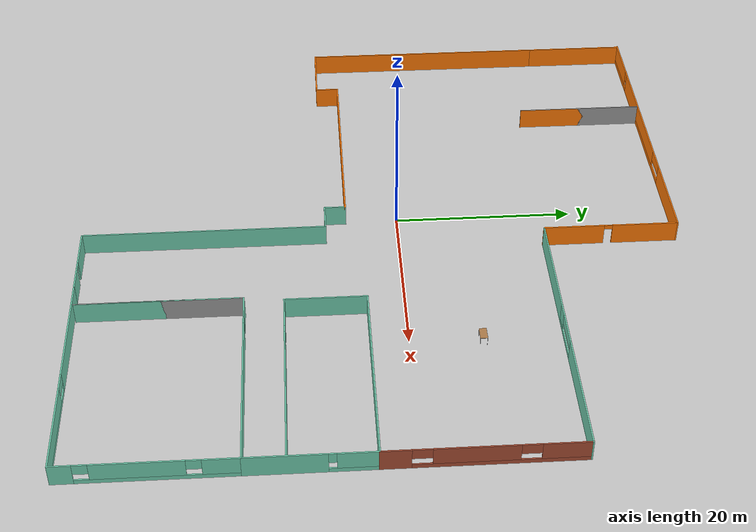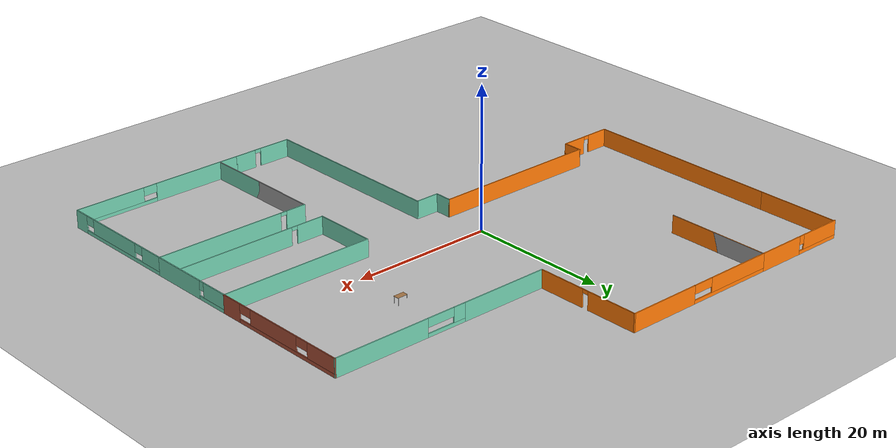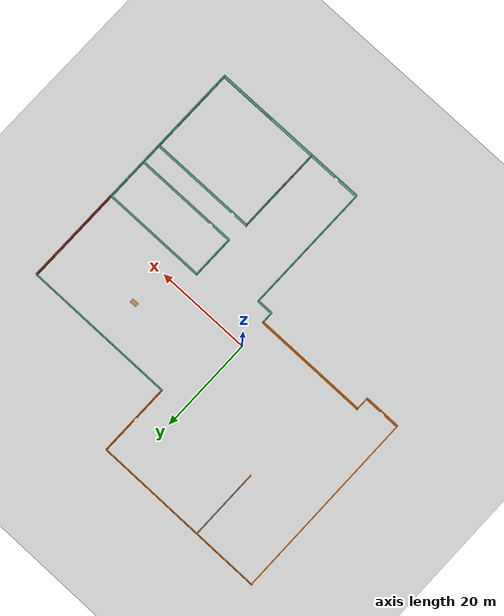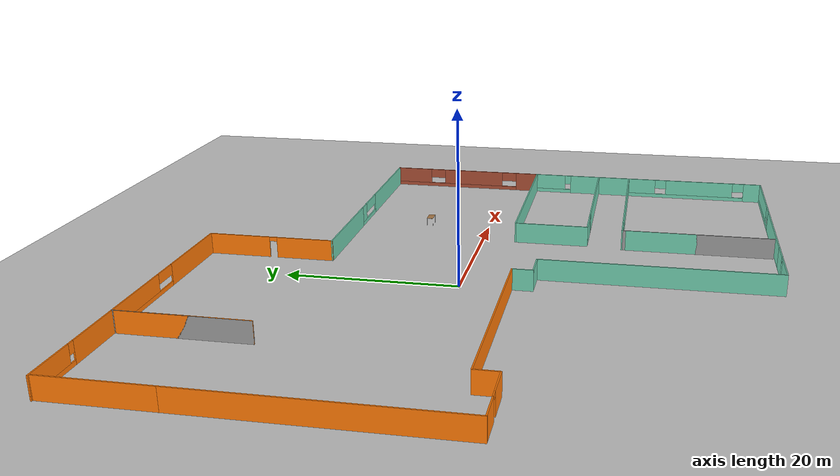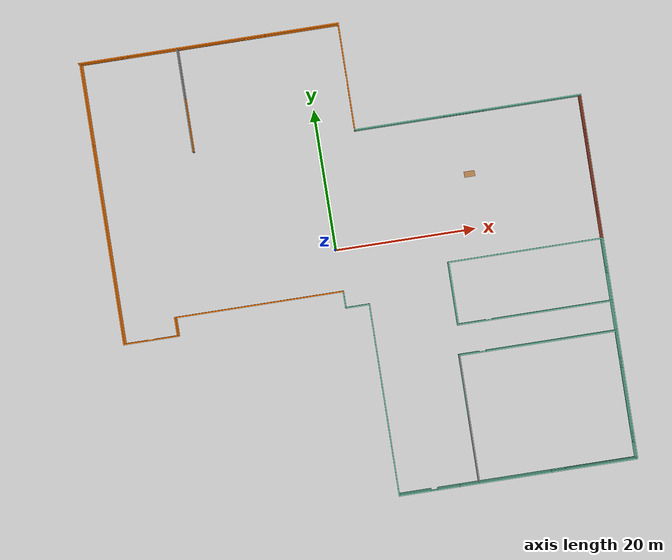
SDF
<sdf version="1.6">
 <world name="default">
  <model name="ground_plane">
   <static>1</static>
   <link name="link">
    <collision name="collision">
     <geometry><plane><normal>0 0 1</normal><size>100 100</size></plane></geometry>
     <surface>
      <contact><collide_bitmask>65535</collide_bitmask></contact>
      <friction><ode><mu>100</mu><mu2>50</mu2></ode></friction>
     </surface>
    </collision>
    <visual name="visual">
     <cast_shadows>0</cast_shadows>
     <geometry><plane><normal>0 0 1</normal><size>100 100</size></plane></geometry>
     <material>
      <script><uri>file://media/materials/scripts/gazebo.material</uri><name>Gazebo/Grey</name></script>
     </material>
    </visual>
   </link>
  </model>
  <model name="building1">
   <pose>2.8843 -1.97126 0 0 -0 0</pose>
   <link name="Wall_0">
    <collision name="Wall_0_Collision">
     <geometry><box><size>28.25 0.15 2.5</size></box></geometry>
     <pose>0 0 1.25 0 -0 0</pose>
    </collision>
    <visual name="Wall_0_Visual">
     <pose>0 0 1.25 0 -0 0</pose>
     <geometry><box><size>28.25 0.15 2.5</size></box></geometry>
     <material>
      <script><uri>file://media/materials/scripts/gazebo.material</uri><name>Gazebo/Grey</name></script>
      <ambient>0.996078 0.47451 0.0196078 1</ambient>
     </material>
     <meta><layer>0</layer></meta>
    </visual>
    <pose>-34.175 7.575 0 0 0 -1.5708</pose>
   </link>
   <link name="Wall_1">
    <pose>-30.375 -6.475 0 0 -0 0</pose>
    <visual name="Wall_1_Visual_0">
     <pose>-2.22971 0 1.25 0 -0 0</pose>
     <geometry><box><size>3.29058 0.15 2.5</size></box></geometry>
     <material>
      <script><uri>file://media/materials/scripts/gazebo.material</uri><name>Gazebo/Grey</name></script>
      <ambient>0.996078 0.47451 0.0196078 1</ambient>
     </material>
     <meta><layer>0</layer></meta>
    </visual>
    <collision name="Wall_1_Collision_0">
     <geometry><box><size>3.29058 0.15 2.5</size></box></geometry>
     <pose>-2.22971 0 1.25 0 -0 0</pose>
    </collision>
    <visual name="Wall_1_Visual_1">
     <pose>2.09529 0 1.25 0 -0 0</pose>
     <geometry><box><size>3.55942 0.15 2.5</size></box></geometry>
     <material>
      <script><uri>file://media/materials/scripts/gazebo.material</uri><name>Gazebo/Grey</name></script>
      <ambient>0.996078 0.47451 0.0196078 1</ambient>
     </material>
     <meta><layer>0</layer></meta>
    </visual>
    <collision name="Wall_1_Collision_1">
     <geometry><box><size>3.55942 0.15 2.5</size></box></geometry>
     <pose>2.09529 0 1.25 0 -0 0</pose>
    </collision>
    <visual name="Wall_1_Visual_2">
     <pose>-0.134418 0 2.25 0 -0 0</pose>
     <geometry><box><size>0.9 0.15 0.5</size></box></geometry>
     <material>
      <script><uri>file://media/materials/scripts/gazebo.material</uri><name>Gazebo/Grey</name></script>
      <ambient>0.996078 0.47451 0.0196078 1</ambient>
     </material>
     <meta><layer>0</layer></meta>
    </visual>
    <collision name="Wall_1_Collision_2">
     <geometry><box><size>0.9 0.15 0.5</size></box></geometry>
     <pose>-0.134418 0 2.25 0 -0 0</pose>
    </collision>
   </link>
   <link name="Wall_10">
    <pose>23.15 -15.225 0 0 -0 3.14159</pose>
    <visual name="Wall_10_Visual_0">
     <pose>-1.95259 0 1.25 0 -0 0</pose>
     <geometry><box><size>18.5948 0.15 2.5</size></box></geometry>
     <material>
      <script><uri>file://media/materials/scripts/gazebo.material</uri><name>Gazebo/Grey</name></script>
      <ambient>0.435294 0.796078 0.67451 1</ambient>
     </material>
     <meta><layer>0</layer></meta>
    </visual>
    <collision name="Wall_10_Collision_0">
     <geometry><box><size>18.5948 0.15 2.5</size></box></geometry>
     <pose>-1.95259 0 1.25 0 -0 0</pose>
    </collision>
    <visual name="Wall_10_Visual_1">
     <pose>9.74741 0 1.25 0 -0 0</pose>
     <geometry><box><size>3.00517 0.15 2.5</size></box></geometry>
     <material>
      <script><uri>file://media/materials/scripts/gazebo.material</uri><name>Gazebo/Grey</name></script>
      <ambient>0.435294 0.796078 0.67451 1</ambient>
     </material>
     <meta><layer>0</layer></meta>
    </visual>
    <collision name="Wall_10_Collision_1">
     <geometry><box><size>3.00517 0.15 2.5</size></box></geometry>
     <pose>9.74741 0 1.25 0 -0 0</pose>
    </collision>
    <visual name="Wall_10_Visual_2">
     <pose>7.79483 0 2.25 0 -0 0</pose>
     <geometry><box><size>0.9 0.15 0.5</size></box></geometry>
     <material>
      <script><uri>file://media/materials/scripts/gazebo.material</uri><name>Gazebo/Grey</name></script>
      <ambient>0.435294 0.796078 0.67451 1</ambient>
     </material>
     <meta><layer>0</layer></meta>
    </visual>
    <collision name="Wall_10_Collision_2">
     <geometry><box><size>0.9 0.15 0.5</size></box></geometry>
     <pose>7.79483 0 2.25 0 -0 0</pose>
    </collision>
   </link>
   <link name="Wall_11">
    <collision name="Wall_11_Collision">
     <geometry><box><size>18 0.15 2.5</size></box></geometry>
     <pose>0 0 1.25 0 -0 0</pose>
    </collision>
    <visual name="Wall_11_Visual">
     <pose>0 0 1.25 0 -0 0</pose>
     <geometry><box><size>18 0.15 2.5</size></box></geometry>
     <material>
      <script><uri>file://media/materials/scripts/gazebo.material</uri><name>Gazebo/Grey</name></script>
      <ambient>1 1 1 1</ambient>
     </material>
     <meta><layer>0</layer></meta>
    </visual>
    <pose>11.975 -24.15 0 0 0 -1.5708</pose>
   </link>
   <link name="Wall_12">
    <collision name="Wall_12_Collision">
     <geometry><box><size>17.5 0.15 2.5</size></box></geometry>
     <pose>0 0 1.25 0 -0 0</pose>
    </collision>
    <visual name="Wall_12_Visual">
     <pose>0 0 1.25 0 -0 0</pose>
     <geometry><box><size>17.5 0.15 2.5</size></box></geometry>
     <material>
      <script><uri>file://media/materials/scripts/gazebo.material</uri><name>Gazebo/Grey</name></script>
      <ambient>0.435294 0.796078 0.67451 1</ambient>
     </material>
     <meta><layer>0</layer></meta>
    </visual>
    <pose>11.975 -24.4 0 0 -0 1.5708</pose>
   </link>
   <link name="Wall_14">
    <pose>34.325 -8.675 0 0 -0 1.5708</pose>
    <visual name="Wall_14_Visual_0">
     <pose>-2.47216 0 1.25 0 -0 0</pose>
     <geometry><box><size>8.30568 0.15 2.5</size></box></geometry>
     <material>
      <script><uri>file://media/materials/scripts/gazebo.material</uri><name>Gazebo/Grey</name></script>
      <ambient>0.435294 0.796078 0.67451 1</ambient>
     </material>
     <meta><layer>0</layer></meta>
    </visual>
    <collision name="Wall_14_Collision_0">
     <geometry><box><size>8.30568 0.15 2.5</size></box></geometry>
     <pose>-2.47216 0 1.25 0 -0 0</pose>
    </collision>
    <visual name="Wall_14_Visual_1">
     <pose>4.15284 0 0.25 0 -0 0</pose>
     <geometry><box><size>4.94432 0.15 0.5</size></box></geometry>
     <material>
      <script><uri>file://media/materials/scripts/gazebo.material</uri><name>Gazebo/Grey</name></script>
      <ambient>0.435294 0.796078 0.67451 1</ambient>
     </material>
     <meta><layer>0</layer></meta>
    </visual>
    <collision name="Wall_14_Collision_1">
     <geometry><box><size>4.94432 0.15 0.5</size></box></geometry>
     <pose>4.15284 0 0.25 0 -0 0</pose>
    </collision>
    <visual name="Wall_14_Visual_2">
     <pose>4.55284 0 1.5 0 -0 0</pose>
     <geometry><box><size>4.14432 0.15 2</size></box></geometry>
     <material>
      <script><uri>file://media/materials/scripts/gazebo.material</uri><name>Gazebo/Grey</name></script>
      <ambient>0.435294 0.796078 0.67451 1</ambient>
     </material>
     <meta><layer>0</layer></meta>
    </visual>
    <collision name="Wall_14_Collision_2">
     <geometry><box><size>4.14432 0.15 2</size></box></geometry>
     <pose>4.55284 0 1.5 0 -0 0</pose>
    </collision>
    <visual name="Wall_14_Visual_3">
     <pose>2.08068 0 1.9 0 -0 0</pose>
     <geometry><box><size>0.8 0.15 1.2</size></box></geometry>
     <material>
      <script><uri>file://media/materials/scripts/gazebo.material</uri><name>Gazebo/Grey</name></script>
      <ambient>0.435294 0.796078 0.67451 1</ambient>
     </material>
     <meta><layer>0</layer></meta>
    </visual>
    <collision name="Wall_14_Collision_3">
     <geometry><box><size>0.8 0.15 1.2</size></box></geometry>
     <pose>2.08068 0 1.9 0 -0 0</pose>
    </collision>
   </link>
   <link name="Wall_15">
    <collision name="Wall_15_Collision">
     <geometry><box><size>22 0.15 2.5</size></box></geometry>
     <pose>0 0 1.25 0 -0 0</pose>
    </collision>
    <visual name="Wall_15_Visual">
     <pose>0 0 1.25 0 -0 0</pose>
     <geometry><box><size>22 0.15 2.5</size></box></geometry>
     <material>
      <script><uri>file://media/materials/scripts/gazebo.material</uri><name>Gazebo/Grey</name></script>
      <ambient>0.435294 0.796078 0.67451 1</ambient>
     </material>
     <meta><layer>0</layer></meta>
    </visual>
    <pose>23.4 -2.125 0 0 -0 3.14159</pose>
   </link>
   <link name="Wall_16">
    <collision name="Wall_16_Collision">
     <geometry><box><size>9 0.15 2.5</size></box></geometry>
     <pose>0 0 1.25 0 -0 0</pose>
    </collision>
    <visual name="Wall_16_Visual">
     <pose>0 0 1.25 0 -0 0</pose>
     <geometry><box><size>9 0.15 2.5</size></box></geometry>
     <material>
      <script><uri>file://media/materials/scripts/gazebo.material</uri><name>Gazebo/Grey</name></script>
      <ambient>0.435294 0.796078 0.67451 1</ambient>
     </material>
     <meta><layer>0</layer></meta>
    </visual>
    <pose>12.475 -6.55 0 0 0 -1.5708</pose>
   </link>
   <link name="Wall_17">
    <pose>23.4 -10.975 0 0 -0 0</pose>
    <visual name="Wall_17_Visual_0">
     <pose>-8.94755 0 1.25 0 -0 0</pose>
     <geometry><box><size>4.1049 0.15 2.5</size></box></geometry>
     <material>
      <script><uri>file://media/materials/scripts/gazebo.material</uri><name>Gazebo/Grey</name></script>
      <ambient>0.435294 0.796078 0.67451 1</ambient>
     </material>
     <meta><layer>0</layer></meta>
    </visual>
    <collision name="Wall_17_Collision_0">
     <geometry><box><size>4.1049 0.15 2.5</size></box></geometry>
     <pose>-8.94755 0 1.25 0 -0 0</pose>
    </collision>
    <visual name="Wall_17_Visual_1">
     <pose>2.50245 0 1.25 0 -0 0</pose>
     <geometry><box><size>16.9951 0.15 2.5</size></box></geometry>
     <material>
      <script><uri>file://media/materials/scripts/gazebo.material</uri><name>Gazebo/Grey</name></script>
      <ambient>0.435294 0.796078 0.67451 1</ambient>
     </material>
     <meta><layer>0</layer></meta>
    </visual>
    <collision name="Wall_17_Collision_1">
     <geometry><box><size>16.9951 0.15 2.5</size></box></geometry>
     <pose>2.50245 0 1.25 0 -0 0</pose>
    </collision>
    <visual name="Wall_17_Visual_2">
     <pose>-6.4451 0 2.25 0 -0 0</pose>
     <geometry><box><size>0.9 0.15 0.5</size></box></geometry>
     <material>
      <script><uri>file://media/materials/scripts/gazebo.material</uri><name>Gazebo/Grey</name></script>
      <ambient>0.435294 0.796078 0.67451 1</ambient>
     </material>
     <meta><layer>0</layer></meta>
    </visual>
    <collision name="Wall_17_Collision_2">
     <geometry><box><size>0.9 0.15 0.5</size></box></geometry>
     <pose>-6.4451 0 2.25 0 -0 0</pose>
    </collision>
   </link>
   <link name="Wall_19">
    <pose>34.325 8.05 0 0 -0 1.5708</pose>
    <visual name="Wall_19_Visual_0">
     <pose>-8.69186 0 1.25 0 -0 0</pose>
     <geometry><box><size>3.11628 0.15 2.5</size></box></geometry>
     <material>
      <script><uri>file://media/materials/scripts/gazebo.material</uri><name>Gazebo/Bricks</name></script>
      <ambient>0.435294 0.796078 0.67451 1</ambient>
     </material>
     <meta><layer>0</layer></meta>
    </visual>
    <collision name="Wall_19_Collision_0">
     <geometry><box><size>3.11628 0.15 2.5</size></box></geometry>
     <pose>-8.69186 0 1.25 0 -0 0</pose>
    </collision>
    <visual name="Wall_19_Visual_1">
     <pose>1.55814 0 0.25 0 -0 0</pose>
     <geometry><box><size>17.3837 0.15 0.5</size></box></geometry>
     <material>
      <script><uri>file://media/materials/scripts/gazebo.material</uri><name>Gazebo/Bricks</name></script>
      <ambient>0.435294 0.796078 0.67451 1</ambient>
     </material>
     <meta><layer>0</layer></meta>
    </visual>
    <collision name="Wall_19_Collision_1">
     <geometry><box><size>17.3837 0.15 0.5</size></box></geometry>
     <pose>1.55814 0 0.25 0 -0 0</pose>
    </collision>
    <visual name="Wall_19_Visual_2">
     <pose>-0.896427 0 1.5 0 -0 0</pose>
     <geometry><box><size>8.47458 0.15 2</size></box></geometry>
     <material>
      <script><uri>file://media/materials/scripts/gazebo.material</uri><name>Gazebo/Bricks</name></script>
      <ambient>0.435294 0.796078 0.67451 1</ambient>
     </material>
     <meta><layer>0</layer></meta>
    </visual>
    <collision name="Wall_19_Collision_2">
     <geometry><box><size>8.47458 0.15 2</size></box></geometry>
     <pose>-0.896427 0 1.5 0 -0 0</pose>
    </collision>
    <visual name="Wall_19_Visual_3">
     <pose>7.79543 0 1.5 0 -0 0</pose>
     <geometry><box><size>4.90914 0.15 2</size></box></geometry>
     <material>
      <script><uri>file://media/materials/scripts/gazebo.material</uri><name>Gazebo/Bricks</name></script>
      <ambient>0.435294 0.796078 0.67451 1</ambient>
     </material>
     <meta><layer>0</layer></meta>
    </visual>
    <collision name="Wall_19_Collision_3">
     <geometry><box><size>4.90914 0.15 2</size></box></geometry>
     <pose>7.79543 0 1.5 0 -0 0</pose>
    </collision>
    <visual name="Wall_19_Visual_4">
     <pose>-6.13372 0 1.9 0 -0 0</pose>
     <geometry><box><size>2 0.15 1.2</size></box></geometry>
     <material>
      <script><uri>file://media/materials/scripts/gazebo.material</uri><name>Gazebo/Bricks</name></script>
      <ambient>0.435294 0.796078 0.67451 1</ambient>
     </material>
     <meta><layer>0</layer></meta>
    </visual>
    <collision name="Wall_19_Collision_4">
     <geometry><box><size>2 0.15 1.2</size></box></geometry>
     <pose>-6.13372 0 1.9 0 -0 0</pose>
    </collision>
    <visual name="Wall_19_Visual_5">
     <pose>4.34086 0 1.9 0 -0 0</pose>
     <geometry><box><size>2 0.15 1.2</size></box></geometry>
     <material>
      <script><uri>file://media/materials/scripts/gazebo.material</uri><name>Gazebo/Bricks</name></script>
      <ambient>0.435294 0.796078 0.67451 1</ambient>
     </material>
     <meta><layer>0</layer></meta>
    </visual>
    <collision name="Wall_19_Collision_5">
     <geometry><box><size>2 0.15 1.2</size></box></geometry>
     <pose>4.34086 0 1.9 0 -0 0</pose>
    </collision>
   </link>
   <link name="Wall_2">
    <collision name="Wall_2_Collision">
     <geometry><box><size>2.75 0.15 2.5</size></box></geometry>
     <pose>0 0 1.25 0 -0 0</pose>
    </collision>
    <visual name="Wall_2_Visual">
     <pose>0 0 1.25 0 -0 0</pose>
     <geometry><box><size>2.75 0.15 2.5</size></box></geometry>
     <material>
      <script><uri>file://media/materials/scripts/gazebo.material</uri><name>Gazebo/Grey</name></script>
      <ambient>0.996078 0.47451 0.0196078 1</ambient>
     </material>
     <meta><layer>0</layer></meta>
    </visual>
    <pose>-26.575 -5.175 0 0 -0 1.5708</pose>
   </link>
   <link name="Wall_20">
    <pose>24.65 18.225 0 0 -0 3.14159</pose>
    <visual name="Wall_20_Visual_0">
     <pose>-2.88254 0 1.25 0 -0 0</pose>
     <geometry><box><size>13.7349 0.15 2.5</size></box></geometry>
     <material>
      <script><uri>file://media/materials/scripts/gazebo.material</uri><name>Gazebo/Grey</name></script>
      <ambient>0.435294 0.796078 0.67451 1</ambient>
     </material>
     <meta><layer>0</layer></meta>
    </visual>
    <collision name="Wall_20_Collision_0">
     <geometry><box><size>13.7349 0.15 2.5</size></box></geometry>
     <pose>-2.88254 0 1.25 0 -0 0</pose>
    </collision>
    <visual name="Wall_20_Visual_1">
     <pose>6.86746 0 0.25 0 -0 0</pose>
     <geometry><box><size>5.76509 0.15 0.5</size></box></geometry>
     <material>
      <script><uri>file://media/materials/scripts/gazebo.material</uri><name>Gazebo/Grey</name></script>
      <ambient>0.435294 0.796078 0.67451 1</ambient>
     </material>
     <meta><layer>0</layer></meta>
    </visual>
    <collision name="Wall_20_Collision_1">
     <geometry><box><size>5.76509 0.15 0.5</size></box></geometry>
     <pose>6.86746 0 0.25 0 -0 0</pose>
    </collision>
    <visual name="Wall_20_Visual_2">
     <pose>8.86746 0 1.5 0 -0 0</pose>
     <geometry><box><size>1.76509 0.15 2</size></box></geometry>
     <material>
      <script><uri>file://media/materials/scripts/gazebo.material</uri><name>Gazebo/Grey</name></script>
      <ambient>0.435294 0.796078 0.67451 1</ambient>
     </material>
     <meta><layer>0</layer></meta>
    </visual>
    <collision name="Wall_20_Collision_2">
     <geometry><box><size>1.76509 0.15 2</size></box></geometry>
     <pose>8.86746 0 1.5 0 -0 0</pose>
    </collision>
    <visual name="Wall_20_Visual_3">
     <pose>5.98491 0 1.9 0 -0 0</pose>
     <geometry><box><size>4 0.15 1.2</size></box></geometry>
     <material>
      <script><uri>file://media/materials/scripts/gazebo.material</uri><name>Gazebo/Grey</name></script>
      <ambient>0.435294 0.796078 0.67451 1</ambient>
     </material>
     <meta><layer>0</layer></meta>
    </visual>
    <collision name="Wall_20_Collision_3">
     <geometry><box><size>4 0.15 1.2</size></box></geometry>
     <pose>5.98491 0 1.9 0 -0 0</pose>
    </collision>
   </link>
   <link name="Wall_21">
    <collision name="Wall_21_Collision">
     <geometry><box><size>12.75 0.15 2.5</size></box></geometry>
     <pose>0 0 1.25 0 -0 0</pose>
    </collision>
    <visual name="Wall_21_Visual">
     <pose>0 0 1.25 0 -0 0</pose>
     <geometry><box><size>12.75 0.15 2.5</size></box></geometry>
     <material>
      <script><uri>file://media/materials/scripts/gazebo.material</uri><name>Gazebo/Grey</name></script>
      <ambient>0.435294 0.796078 0.67451 1</ambient>
     </material>
     <meta><layer>0</layer></meta>
    </visual>
    <pose>8.675 18.225 0 0 -0 3.14159</pose>
   </link>
   <link name="Wall_22">
    <pose>2.375 25.775 0 0 -0 1.5708</pose>
    <visual name="Wall_22_Visual_0">
     <pose>-4.18684 0 1.25 0 -0 0</pose>
     <geometry><box><size>6.87632 0.15 2.5</size></box></geometry>
     <material>
      <script><uri>file://media/materials/scripts/gazebo.material</uri><name>Gazebo/Grey</name></script>
      <ambient>0.996078 0.47451 0.0196078 1</ambient>
     </material>
     <meta><layer>0</layer></meta>
    </visual>
    <collision name="Wall_22_Collision_0">
     <geometry><box><size>6.87632 0.15 2.5</size></box></geometry>
     <pose>-4.18684 0 1.25 0 -0 0</pose>
    </collision>
    <visual name="Wall_22_Visual_1">
     <pose>3.88816 0 1.25 0 -0 0</pose>
     <geometry><box><size>7.47368 0.15 2.5</size></box></geometry>
     <material>
      <script><uri>file://media/materials/scripts/gazebo.material</uri><name>Gazebo/Grey</name></script>
      <ambient>0.996078 0.47451 0.0196078 1</ambient>
     </material>
     <meta><layer>0</layer></meta>
    </visual>
    <collision name="Wall_22_Collision_1">
     <geometry><box><size>7.47368 0.15 2.5</size></box></geometry>
     <pose>3.88816 0 1.25 0 -0 0</pose>
    </collision>
    <visual name="Wall_22_Visual_2">
     <pose>-0.298676 0 2.25 0 -0 0</pose>
     <geometry><box><size>0.9 0.15 0.5</size></box></geometry>
     <material>
      <script><uri>file://media/materials/scripts/gazebo.material</uri><name>Gazebo/Grey</name></script>
      <ambient>0.996078 0.47451 0.0196078 1</ambient>
     </material>
     <meta><layer>0</layer></meta>
    </visual>
    <collision name="Wall_22_Collision_2">
     <geometry><box><size>0.9 0.15 0.5</size></box></geometry>
     <pose>-0.298676 0 2.25 0 -0 0</pose>
    </collision>
   </link>
   <link name="Wall_23">
    <pose>-9.05 33.325 0 0 -0 3.14159</pose>
    <visual name="Wall_23_Visual_0">
     <pose>-6.28232 0 1.25 0 -0 0</pose>
     <geometry><box><size>10.4354 0.15 2.5</size></box></geometry>
     <material>
      <script><uri>file://media/materials/scripts/gazebo.material</uri><name>Gazebo/Grey</name></script>
      <ambient>0.996078 0.47451 0.0196078 1</ambient>
     </material>
     <meta><layer>0</layer></meta>
    </visual>
    <collision name="Wall_23_Collision_0">
     <geometry><box><size>10.4354 0.15 2.5</size></box></geometry>
     <pose>-6.28232 0 1.25 0 -0 0</pose>
    </collision>
    <visual name="Wall_23_Visual_1">
     <pose>5.21768 0 0.25 0 -0 0</pose>
     <geometry><box><size>12.5646 0.15 0.5</size></box></geometry>
     <material>
      <script><uri>file://media/materials/scripts/gazebo.material</uri><name>Gazebo/Grey</name></script>
      <ambient>0.996078 0.47451 0.0196078 1</ambient>
     </material>
     <meta><layer>0</layer></meta>
    </visual>
    <collision name="Wall_23_Collision_1">
     <geometry><box><size>12.5646 0.15 0.5</size></box></geometry>
     <pose>5.21768 0 0.25 0 -0 0</pose>
    </collision>
    <visual name="Wall_23_Visual_2">
     <pose>6.71768 0 1.5 0 -0 0</pose>
     <geometry><box><size>9.56464 0.15 2</size></box></geometry>
     <material>
      <script><uri>file://media/materials/scripts/gazebo.material</uri><name>Gazebo/Grey</name></script>
      <ambient>0.996078 0.47451 0.0196078 1</ambient>
     </material>
     <meta><layer>0</layer></meta>
    </visual>
    <collision name="Wall_23_Collision_2">
     <geometry><box><size>9.56464 0.15 2</size></box></geometry>
     <pose>6.71768 0 1.5 0 -0 0</pose>
    </collision>
    <visual name="Wall_23_Visual_3">
     <pose>0.435356 0 1.9 0 -0 0</pose>
     <geometry><box><size>3 0.15 1.2</size></box></geometry>
     <material>
      <script><uri>file://media/materials/scripts/gazebo.material</uri><name>Gazebo/Grey</name></script>
      <ambient>0.996078 0.47451 0.0196078 1</ambient>
     </material>
     <meta><layer>0</layer></meta>
    </visual>
    <collision name="Wall_23_Collision_3">
     <geometry><box><size>3 0.15 1.2</size></box></geometry>
     <pose>0.435356 0 1.9 0 -0 0</pose>
    </collision>
   </link>
   <link name="Wall_24">
    <collision name="Wall_24_Collision">
     <geometry><box><size>14.75 0.15 2.5</size></box></geometry>
     <pose>0 0 1.25 0 -0 0</pose>
    </collision>
    <visual name="Wall_24_Visual">
     <pose>0 0 1.25 0 -0 0</pose>
     <geometry><box><size>14.75 0.15 2.5</size></box></geometry>
     <material>
      <script><uri>file://media/materials/scripts/gazebo.material</uri><name>Gazebo/Grey</name></script>
      <ambient>1 1 1 1</ambient>
     </material>
     <meta><layer>0</layer></meta>
    </visual>
    <pose>-20.475 26.025 0 0 0 -1.5708</pose>
   </link>
   <link name="Wall_25">
    <collision name="Wall_25_Collision">
     <geometry><box><size>14.5 0.15 2.5</size></box></geometry>
     <pose>0 0 1.25 0 -0 0</pose>
    </collision>
    <visual name="Wall_25_Visual">
     <pose>0 0 1.25 0 -0 0</pose>
     <geometry><box><size>14.5 0.15 2.5</size></box></geometry>
     <material>
      <script><uri>file://media/materials/scripts/gazebo.material</uri><name>Gazebo/Grey</name></script>
      <ambient>0.996078 0.47451 0.0196078 1</ambient>
     </material>
     <meta><layer>0</layer></meta>
    </visual>
    <pose>-20.475 25.9 0 0 -0 1.5708</pose>
   </link>
   <link name="Wall_26">
    <collision name="Wall_26_Collision">
     <geometry><box><size>0.4 0.15 2.5</size></box></geometry>
     <pose>0 0 1.25 0 -0 0</pose>
    </collision>
    <visual name="Wall_26_Visual">
     <pose>0 0 1.25 0 -0 0</pose>
     <geometry><box><size>0.4 0.15 2.5</size></box></geometry>
     <material>
      <script><uri>file://media/materials/scripts/gazebo.material</uri><name>Gazebo/Grey</name></script>
      <ambient>1 1 1 1</ambient>
     </material>
     <meta><layer>0</layer></meta>
    </visual>
    <pose>-20.475 33.2 0 0 -0 1.5708</pose>
   </link>
   <link name="Wall_27">
    <pose>-27.4 33.325 0 0 -0 3.14159</pose>
    <visual name="Wall_27_Visual_0">
     <pose>-3.49206 0 1.25 0 -0 0</pose>
     <geometry><box><size>7.01587 0.15 2.5</size></box></geometry>
     <material>
      <script><uri>file://media/materials/scripts/gazebo.material</uri><name>Gazebo/Grey</name></script>
      <ambient>0.996078 0.47451 0.0196078 1</ambient>
     </material>
     <meta><layer>0</layer></meta>
    </visual>
    <collision name="Wall_27_Collision_0">
     <geometry><box><size>7.01587 0.15 2.5</size></box></geometry>
     <pose>-3.49206 0 1.25 0 -0 0</pose>
    </collision>
    <visual name="Wall_27_Visual_1">
     <pose>3.50794 0 0.25 0 -0 0</pose>
     <geometry><box><size>6.98413 0.15 0.5</size></box></geometry>
     <material>
      <script><uri>file://media/materials/scripts/gazebo.material</uri><name>Gazebo/Grey</name></script>
      <ambient>0.996078 0.47451 0.0196078 1</ambient>
     </material>
     <meta><layer>0</layer></meta>
    </visual>
    <collision name="Wall_27_Collision_1">
     <geometry><box><size>6.98413 0.15 0.5</size></box></geometry>
     <pose>3.50794 0 0.25 0 -0 0</pose>
    </collision>
    <visual name="Wall_27_Visual_2">
     <pose>3.90794 0 1.5 0 -0 0</pose>
     <geometry><box><size>6.18413 0.15 2</size></box></geometry>
     <material>
      <script><uri>file://media/materials/scripts/gazebo.material</uri><name>Gazebo/Grey</name></script>
      <ambient>0.996078 0.47451 0.0196078 1</ambient>
     </material>
     <meta><layer>0</layer></meta>
    </visual>
    <collision name="Wall_27_Collision_2">
     <geometry><box><size>6.18413 0.15 2</size></box></geometry>
     <pose>3.90794 0 1.5 0 -0 0</pose>
    </collision>
    <visual name="Wall_27_Visual_3">
     <pose>0.415874 0 1.9 0 -0 0</pose>
     <geometry><box><size>0.8 0.15 1.2</size></box></geometry>
     <material>
      <script><uri>file://media/materials/scripts/gazebo.material</uri><name>Gazebo/Grey</name></script>
      <ambient>0.996078 0.47451 0.0196078 1</ambient>
     </material>
     <meta><layer>0</layer></meta>
    </visual>
    <collision name="Wall_27_Collision_3">
     <geometry><box><size>0.8 0.15 1.2</size></box></geometry>
     <pose>0.415874 0 1.9 0 -0 0</pose>
    </collision>
   </link>
   <link name="Wall_3">
    <collision name="Wall_3_Collision">
     <geometry><box><size>24 0.15 2.5</size></box></geometry>
     <pose>0 0 1.25 0 -0 0</pose>
    </collision>
    <visual name="Wall_3_Visual">
     <pose>0 0 1.25 0 -0 0</pose>
     <geometry><box><size>24 0.15 2.5</size></box></geometry>
     <material>
      <script><uri>file://media/materials/scripts/gazebo.material</uri><name>Gazebo/Grey</name></script>
      <ambient>0.996078 0.47451 0.0196078 1</ambient>
     </material>
     <meta><layer>0</layer></meta>
    </visual>
    <pose>-14.65 -3.875 0 0 -0 0</pose>
   </link>
   <link name="Wall_30">
    <collision name="Wall_30_Collision">
     <geometry><box><size>11.75 0.15 2.5</size></box></geometry>
     <pose>0 0 1.25 0 -0 0</pose>
    </collision>
    <visual name="Wall_30_Visual">
     <pose>0 0 1.25 0 -0 0</pose>
     <geometry><box><size>11.75 0.15 2.5</size></box></geometry>
     <material>
      <script><uri>file://media/materials/scripts/gazebo.material</uri><name>Gazebo/Grey</name></script>
      <ambient>0.996078 0.47451 0.0196078 1</ambient>
     </material>
     <meta><layer>0</layer></meta>
    </visual>
    <pose>-34.175 27.425 0 0 -0 1.5708</pose>
   </link>
   <link name="Wall_4">
    <collision name="Wall_4_Collision">
     <geometry><box><size>2.5 0.15 2.5</size></box></geometry>
     <pose>0 0 1.25 0 -0 0</pose>
    </collision>
    <visual name="Wall_4_Visual">
     <pose>0 0 1.25 0 -0 0</pose>
     <geometry><box><size>2.5 0.15 2.5</size></box></geometry>
     <material>
      <script><uri>file://media/materials/scripts/gazebo.material</uri><name>Gazebo/Grey</name></script>
      <ambient>0.435294 0.796078 0.67451 1</ambient>
     </material>
     <meta><layer>0</layer></meta>
    </visual>
    <pose>-2.725 -5.05 0 0 0 -1.5708</pose>
   </link>
   <link name="Wall_5">
    <collision name="Wall_5_Collision">
     <geometry><box><size>3.5 0.15 2.5</size></box></geometry>
     <pose>0 0 1.25 0 -0 0</pose>
    </collision>
    <visual name="Wall_5_Visual">
     <pose>0 0 1.25 0 -0 0</pose>
     <geometry><box><size>3.5 0.15 2.5</size></box></geometry>
     <material>
      <script><uri>file://media/materials/scripts/gazebo.material</uri><name>Gazebo/Grey</name></script>
      <ambient>0.435294 0.796078 0.67451 1</ambient>
     </material>
     <meta><layer>0</layer></meta>
    </visual>
    <pose>-1.05 -6.225 0 0 -0 0</pose>
   </link>
   <link name="Wall_6">
    <collision name="Wall_6_Collision">
     <geometry><box><size>27.25 0.15 2.5</size></box></geometry>
     <pose>0 0 1.25 0 -0 0</pose>
    </collision>
    <visual name="Wall_6_Visual">
     <pose>0 0 1.25 0 -0 0</pose>
     <geometry><box><size>27.25 0.15 2.5</size></box></geometry>
     <material>
      <script><uri>file://media/materials/scripts/gazebo.material</uri><name>Gazebo/Grey</name></script>
      <ambient>0.435294 0.796078 0.67451 1</ambient>
     </material>
     <meta><layer>0</layer></meta>
    </visual>
    <pose>0.625002 -19.775 0 0 0 -1.5708</pose>
   </link>
   <link name="Wall_7">
    <pose>4.925 -33.325 0 0 -0 0</pose>
    <visual name="Wall_7_Visual_0">
     <pose>-2.04468 0 1.25 0 -0 0</pose>
     <geometry><box><size>4.66063 0.15 2.5</size></box></geometry>
     <material>
      <script><uri>file://media/materials/scripts/gazebo.material</uri><name>Gazebo/Grey</name></script>
      <ambient>0.435294 0.796078 0.67451 1</ambient>
     </material>
     <meta><layer>0</layer></meta>
    </visual>
    <collision name="Wall_7_Collision_0">
     <geometry><box><size>4.66063 0.15 2.5</size></box></geometry>
     <pose>-2.04468 0 1.25 0 -0 0</pose>
    </collision>
    <visual name="Wall_7_Visual_1">
     <pose>2.78031 0 1.25 0 -0 0</pose>
     <geometry><box><size>3.18937 0.15 2.5</size></box></geometry>
     <material>
      <script><uri>file://media/materials/scripts/gazebo.material</uri><name>Gazebo/Grey</name></script>
      <ambient>0.435294 0.796078 0.67451 1</ambient>
     </material>
     <meta><layer>0</layer></meta>
    </visual>
    <collision name="Wall_7_Collision_1">
     <geometry><box><size>3.18937 0.15 2.5</size></box></geometry>
     <pose>2.78031 0 1.25 0 -0 0</pose>
    </collision>
    <visual name="Wall_7_Visual_2">
     <pose>0.73563 0 2.25 0 -0 0</pose>
     <geometry><box><size>0.9 0.15 0.5</size></box></geometry>
     <material>
      <script><uri>file://media/materials/scripts/gazebo.material</uri><name>Gazebo/Grey</name></script>
      <ambient>0.435294 0.796078 0.67451 1</ambient>
     </material>
     <meta><layer>0</layer></meta>
    </visual>
    <collision name="Wall_7_Collision_2">
     <geometry><box><size>0.9 0.15 0.5</size></box></geometry>
     <pose>0.73563 0 2.25 0 -0 0</pose>
    </collision>
   </link>
   <link name="Wall_8">
    <pose>21.775 -33.325 0 0 -0 0</pose>
    <visual name="Wall_8_Visual_0">
     <pose>-6.07614 0 1.25 0 -0 0</pose>
     <geometry><box><size>13.0977 0.15 2.5</size></box></geometry>
     <material>
      <script><uri>file://media/materials/scripts/gazebo.material</uri><name>Gazebo/Grey</name></script>
      <ambient>0.435294 0.796078 0.67451 1</ambient>
     </material>
     <meta><layer>0</layer></meta>
    </visual>
    <collision name="Wall_8_Collision_0">
     <geometry><box><size>13.0977 0.15 2.5</size></box></geometry>
     <pose>-6.07614 0 1.25 0 -0 0</pose>
    </collision>
    <visual name="Wall_8_Visual_1">
     <pose>6.54886 0 0.25 0 -0 0</pose>
     <geometry><box><size>12.1523 0.15 0.5</size></box></geometry>
     <material>
      <script><uri>file://media/materials/scripts/gazebo.material</uri><name>Gazebo/Grey</name></script>
      <ambient>0.435294 0.796078 0.67451 1</ambient>
     </material>
     <meta><layer>0</layer></meta>
    </visual>
    <collision name="Wall_8_Collision_1">
     <geometry><box><size>12.1523 0.15 0.5</size></box></geometry>
     <pose>6.54886 0 0.25 0 -0 0</pose>
    </collision>
    <visual name="Wall_8_Visual_2">
     <pose>7.54886 0 1.5 0 -0 0</pose>
     <geometry><box><size>10.1523 0.15 2</size></box></geometry>
     <material>
      <script><uri>file://media/materials/scripts/gazebo.material</uri><name>Gazebo/Grey</name></script>
      <ambient>0.435294 0.796078 0.67451 1</ambient>
     </material>
     <meta><layer>0</layer></meta>
    </visual>
    <collision name="Wall_8_Collision_2">
     <geometry><box><size>10.1523 0.15 2</size></box></geometry>
     <pose>7.54886 0 1.5 0 -0 0</pose>
    </collision>
    <visual name="Wall_8_Visual_3">
     <pose>1.47272 0 1.9 0 -0 0</pose>
     <geometry><box><size>2 0.15 1.2</size></box></geometry>
     <material>
      <script><uri>file://media/materials/scripts/gazebo.material</uri><name>Gazebo/Grey</name></script>
      <ambient>0.435294 0.796078 0.67451 1</ambient>
     </material>
     <meta><layer>0</layer></meta>
    </visual>
    <collision name="Wall_8_Collision_3">
     <geometry><box><size>2 0.15 1.2</size></box></geometry>
     <pose>1.47272 0 1.9 0 -0 0</pose>
    </collision>
   </link>
   <link name="Wall_9">
    <pose>34.325 -24.275 0 0 -0 1.5708</pose>
    <visual name="Wall_9_Visual_0">
     <pose>-7.9629 0 1.25 0 -0 0</pose>
     <geometry><box><size>2.3242 0.15 2.5</size></box></geometry>
     <material>
      <script><uri>file://media/materials/scripts/gazebo.material</uri><name>Gazebo/Grey</name></script>
      <ambient>0.435294 0.796078 0.67451 1</ambient>
     </material>
     <meta><layer>0</layer></meta>
    </visual>
    <collision name="Wall_9_Collision_0">
     <geometry><box><size>2.3242 0.15 2.5</size></box></geometry>
     <pose>-7.9629 0 1.25 0 -0 0</pose>
    </collision>
    <visual name="Wall_9_Visual_1">
     <pose>1.1621 0 0.25 0 -0 0</pose>
     <geometry><box><size>15.9258 0.15 0.5</size></box></geometry>
     <material>
      <script><uri>file://media/materials/scripts/gazebo.material</uri><name>Gazebo/Grey</name></script>
      <ambient>0.435294 0.796078 0.67451 1</ambient>
     </material>
     <meta><layer>0</layer></meta>
    </visual>
    <collision name="Wall_9_Collision_1">
     <geometry><box><size>15.9258 0.15 0.5</size></box></geometry>
     <pose>1.1621 0 0.25 0 -0 0</pose>
    </collision>
    <visual name="Wall_9_Visual_2">
     <pose>-0.731672 0 1.5 0 -0 0</pose>
     <geometry><box><size>9.13825 0.15 2</size></box></geometry>
     <material>
      <script><uri>file://media/materials/scripts/gazebo.material</uri><name>Gazebo/Grey</name></script>
      <ambient>0.435294 0.796078 0.67451 1</ambient>
     </material>
     <meta><layer>0</layer></meta>
    </visual>
    <collision name="Wall_9_Collision_2">
     <geometry><box><size>9.13825 0.15 2</size></box></geometry>
     <pose>-0.731672 0 1.5 0 -0 0</pose>
    </collision>
    <visual name="Wall_9_Visual_3">
     <pose>7.23123 0 1.5 0 -0 0</pose>
     <geometry><box><size>3.78755 0.15 2</size></box></geometry>
     <material>
      <script><uri>file://media/materials/scripts/gazebo.material</uri><name>Gazebo/Grey</name></script>
      <ambient>0.435294 0.796078 0.67451 1</ambient>
     </material>
     <meta><layer>0</layer></meta>
    </visual>
    <collision name="Wall_9_Collision_3">
     <geometry><box><size>3.78755 0.15 2</size></box></geometry>
     <pose>7.23123 0 1.5 0 -0 0</pose>
    </collision>
    <visual name="Wall_9_Visual_4">
     <pose>-6.0508 0 1.9 0 -0 0</pose>
     <geometry><box><size>1.5 0.15 1.2</size></box></geometry>
     <material>
      <script><uri>file://media/materials/scripts/gazebo.material</uri><name>Gazebo/Grey</name></script>
      <ambient>0.435294 0.796078 0.67451 1</ambient>
     </material>
     <meta><layer>0</layer></meta>
    </visual>
    <collision name="Wall_9_Collision_4">
     <geometry><box><size>1.5 0.15 1.2</size></box></geometry>
     <pose>-6.0508 0 1.9 0 -0 0</pose>
    </collision>
    <visual name="Wall_9_Visual_5">
     <pose>4.58745 0 1.9 0 -0 0</pose>
     <geometry><box><size>1.5 0.15 1.2</size></box></geometry>
     <material>
      <script><uri>file://media/materials/scripts/gazebo.material</uri><name>Gazebo/Grey</name></script>
      <ambient>0.435294 0.796078 0.67451 1</ambient>
     </material>
     <meta><layer>0</layer></meta>
    </visual>
    <collision name="Wall_9_Collision_5">
     <geometry><box><size>1.5 0.15 1.2</size></box></geometry>
     <pose>4.58745 0 1.9 0 -0 0</pose>
    </collision>
   </link>
   <static>1</static>
  </model>
  <model name="table">
   <static>1</static>
   <link name="link">
    <collision name="surface">
     <pose>0 0 1 0 -0 0</pose>
     <geometry><box><size>1.5 0.8 0.03</size></box></geometry>
     <surface><friction><ode><mu>0.6</mu><mu2>0.6</mu2></ode></friction></surface>
    </collision>
    <visual name="visual1">
     <pose>0 0 1 0 -0 0</pose>
     <geometry><box><size>1.5 0.8 0.03</size></box></geometry>
     <material>
      <script><uri>file://media/materials/scripts/gazebo.material</uri><name>Gazebo/Wood</name></script>
     </material>
    </visual>
    <collision name="front_left_leg">
     <pose>0.68 0.38 0.5 0 -0 0</pose>
     <geometry><cylinder><radius>0.02</radius><length>1</length></cylinder></geometry>
    </collision>
    <visual name="front_left_leg">
     <pose>0.68 0.38 0.5 0 -0 0</pose>
     <geometry><cylinder><radius>0.02</radius><length>1</length></cylinder></geometry>
     <material>
      <script><uri>file://media/materials/scripts/gazebo.material</uri><name>Gazebo/Grey</name></script>
     </material>
    </visual>
    <collision name="front_right_leg">
     <pose>0.68 -0.38 0.5 0 -0 0</pose>
     <geometry><cylinder><radius>0.02</radius><length>1</length></cylinder></geometry>
    </collision>
    <visual name="front_right_leg">
     <pose>0.68 -0.38 0.5 0 -0 0</pose>
     <geometry><cylinder><radius>0.02</radius><length>1</length></cylinder></geometry>
     <material>
      <script><uri>file://media/materials/scripts/gazebo.material</uri><name>Gazebo/Grey</name></script>
     </material>
    </visual>
    <collision name="back_right_leg">
     <pose>-0.68 -0.38 0.5 0 -0 0</pose>
     <geometry><cylinder><radius>0.02</radius><length>1</length></cylinder></geometry>
    </collision>
    <visual name="back_right_leg">
     <pose>-0.68 -0.38 0.5 0 -0 0</pose>
     <geometry><cylinder><radius>0.02</radius><length>1</length></cylinder></geometry>
     <material>
      <script><uri>file://media/materials/scripts/gazebo.material</uri><name>Gazebo/Grey</name></script>
     </material>
    </visual>
    <collision name="back_left_leg">
     <pose>-0.68 0.38 0.5 0 -0 0</pose>
     <geometry><cylinder><radius>0.02</radius><length>1</length></cylinder></geometry>
    </collision>
    <visual name="back_left_leg">
     <pose>-0.68 0.38 0.5 0 -0 0</pose>
     <geometry><cylinder><radius>0.02</radius><length>1</length></cylinder></geometry>
     <material>
      <script><uri>file://media/materials/scripts/gazebo.material</uri><name>Gazebo/Grey</name></script>
     </material>
    </visual>
   </link>
   <pose>20.2564 7.73132 0 0 -0 0</pose>
  </model>
  <model name="my_ball">
   <link name="link_0">
    <inertial>
     <mass>1</mass>
     <inertia><ixx>0.1</ixx><ixy>0</ixy><ixz>0</ixz><iyy>0.1</iyy><iyz>0</iyz><izz>0.1</izz></inertia>
    </inertial>
    <visual name="visual">
     <geometry><sphere><radius>0.1</radius></sphere></geometry>
     <material>
      <lighting>1</lighting>
      <script><uri>file://media/materials/scripts/gazebo.material</uri><name>Gazebo/Grey</name></script>
      <shader type="pixel"><normal_map>__default__</normal_map></shader>
      <ambient>1 1 1 1</ambient>
      <diffuse>1 1 1 1</diffuse>
      <specular>1 1 1 1</specular>
      <emissive>1 1 1 1</emissive>
     </material>
    </visual>
    <collision name="collision">
     <geometry><sphere><radius>0.1</radius></sphere></geometry>
     <surface>
      <friction>
       <ode><mu>1</mu><mu2>1</mu2><fdir1>0 0 0</fdir1><slip1>0</slip1><slip2>0</slip2></ode>
       <torsional>
        <coefficient>1</coefficient>
        <patch_radius>0</patch_radius>
        <surface_radius>0</surface_radius>
        <use_patch_radius>1</use_patch_radius>
        <ode><slip>0</slip></ode>
       </torsional>
      </friction>
      <bounce><restitution_coefficient>0</restitution_coefficient><threshold>1e+06</threshold></bounce>
      <contact>
       <collide_without_contact>0</collide_without_contact>
       <collide_without_contact_bitmask>1</collide_without_contact_bitmask>
       <collide_bitmask>1</collide_bitmask>
       <ode>
        <soft_cfm>0</soft_cfm>
        <soft_erp>0.2</soft_erp>
        <kp>1e+13</kp>
        <kd>1</kd>
        <max_vel>0.01</max_vel>
        <min_depth>0</min_depth>
       </ode>
       <bullet>
        <split_impulse>1</split_impulse>
        <split_impulse_penetration_threshold>-0.01</split_impulse_penetration_threshold>
        <soft_cfm>0</soft_cfm>
        <soft_erp>0.2</soft_erp>
        <kp>1e+13</kp>
        <kd>1</kd>
       </bullet>
      </contact>
     </surface>
    </collision>
   </link>
   <static>0</static>
   <pose>3.93779 -0.023519 0.1 0 -0 0</pose>
  </model>
 </world>
</sdf>
